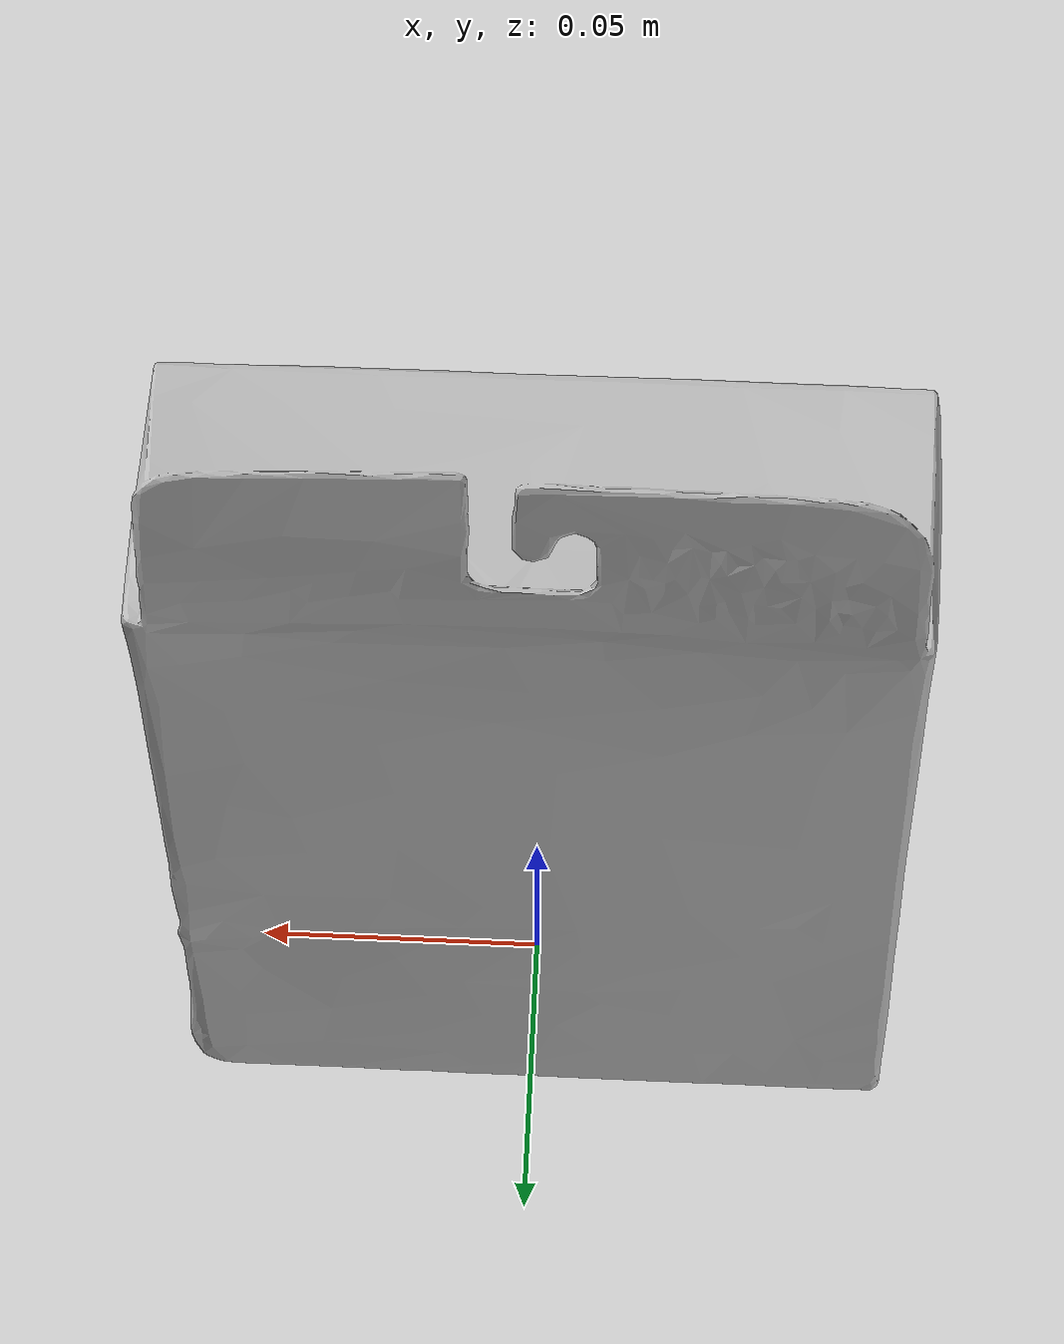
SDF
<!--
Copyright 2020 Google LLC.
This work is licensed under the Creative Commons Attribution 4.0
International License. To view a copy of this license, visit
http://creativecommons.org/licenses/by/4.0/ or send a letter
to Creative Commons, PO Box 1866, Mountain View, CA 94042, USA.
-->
<?xml version="1.0" ?>
<sdf version="1.6">
  <model name="Crayola_Model_Magic_Modeling_Material_White_3_oz">
    <link name="link_0">
      <visual name="visual">
        <geometry>
          <mesh>
            <uri>meshes/model.obj</uri>
          </mesh>
        </geometry>
      </visual>
      <collision name="collision_0">
        <geometry>
          <mesh>
            <uri>meshes/model.obj</uri>
          </mesh>
        </geometry>
      </collision>
    </link>
  </model>
</sdf>
